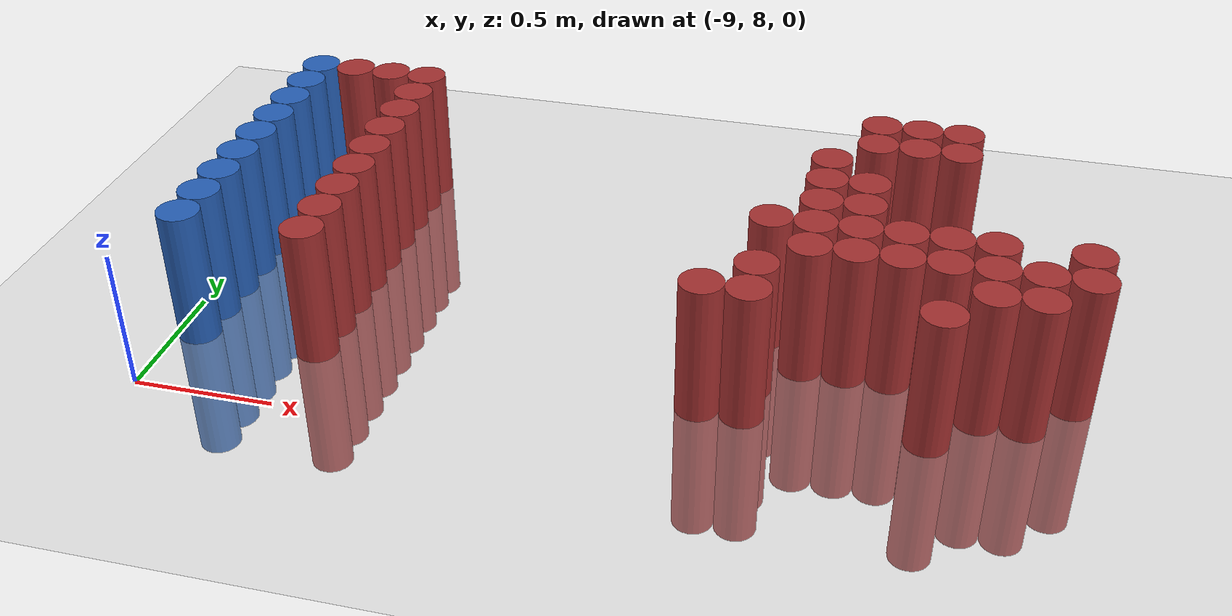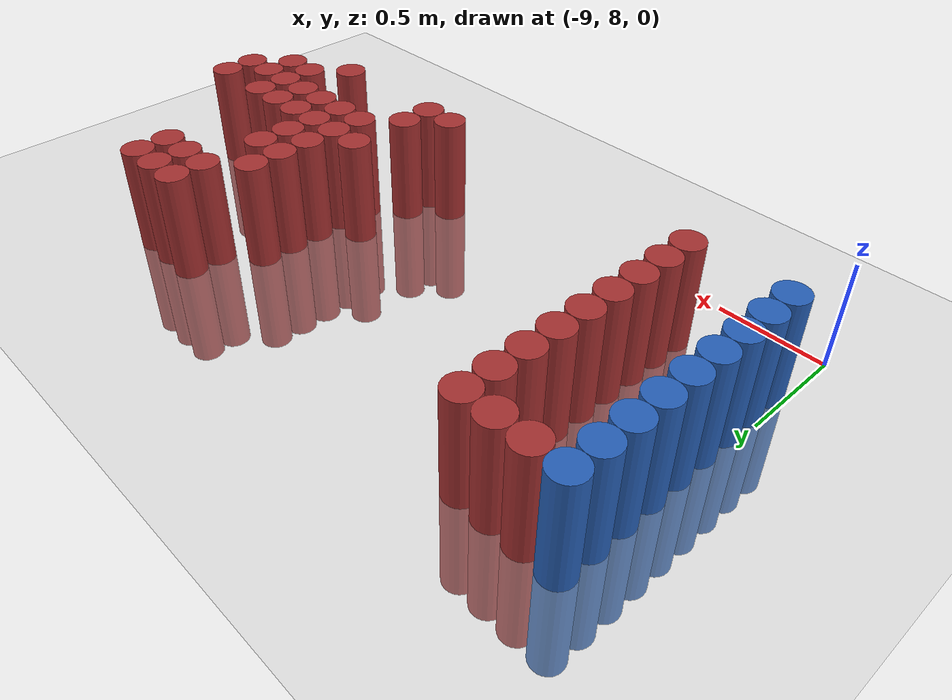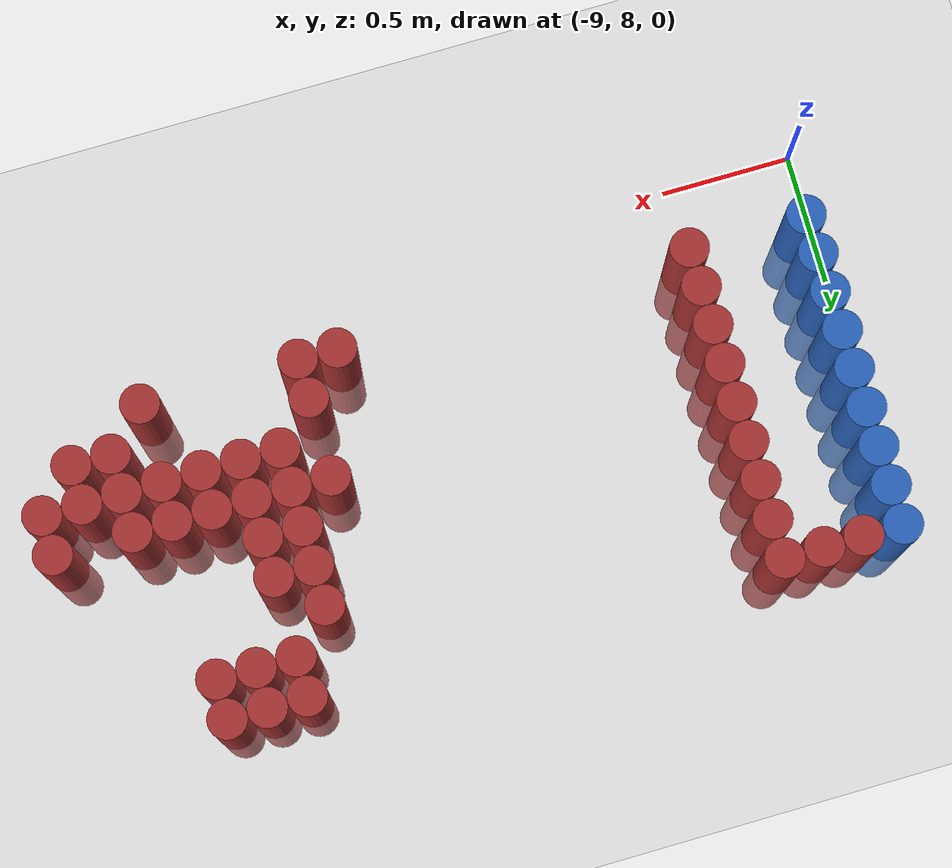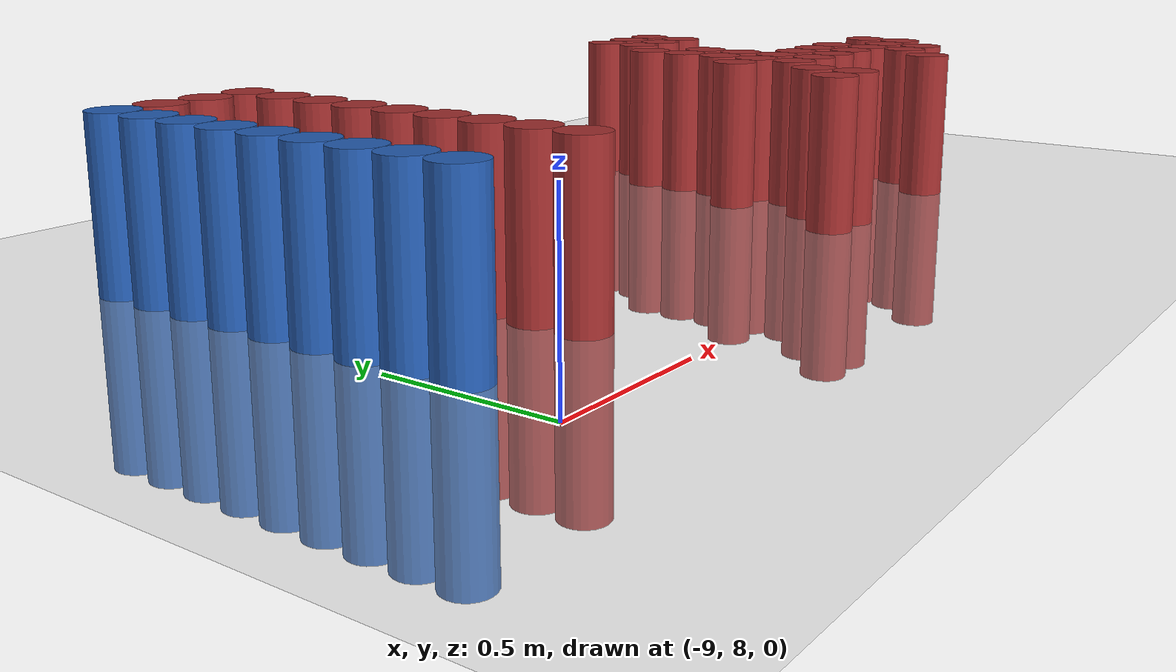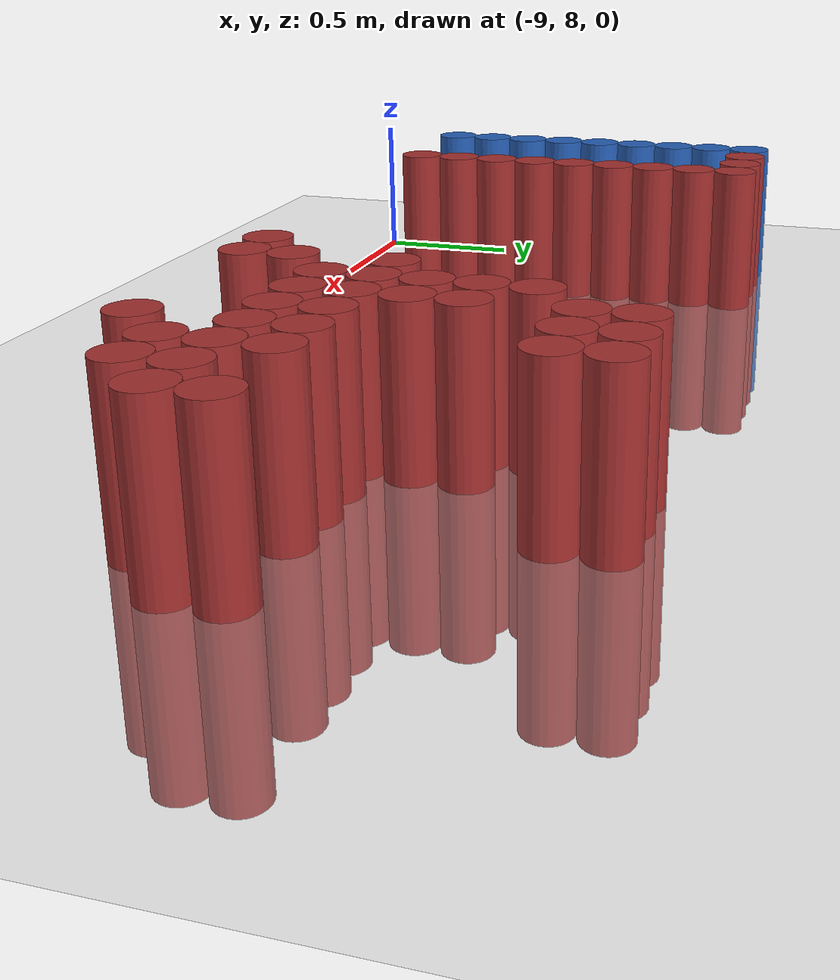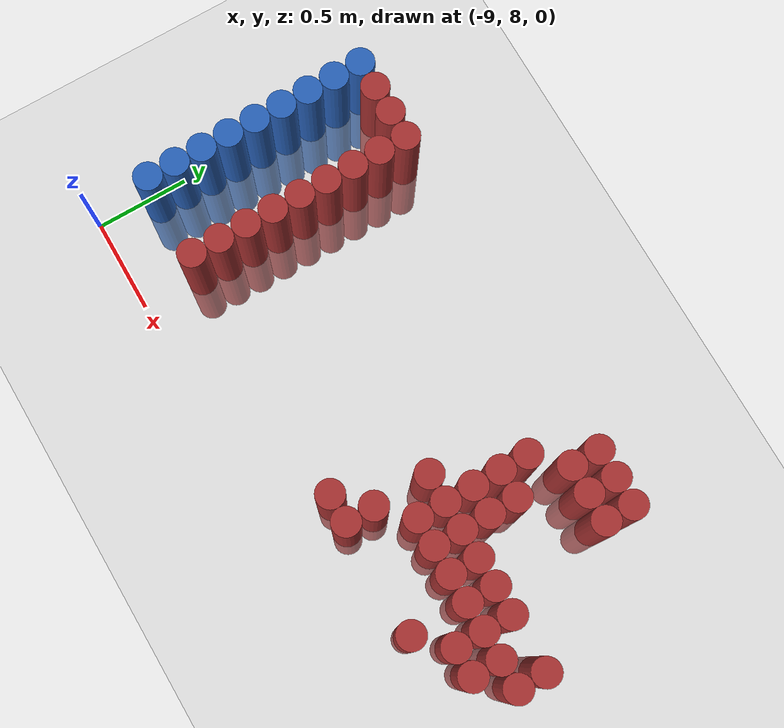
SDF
<sdf version="1.6">
 <world name="default">
  <model name="ground_plane">
   <static>1</static>
   <link name="link">
    <collision name="collision">
     <geometry><plane><normal>0 0 1</normal><size>100 100</size></plane></geometry>
     <surface><friction><ode><mu>100</mu><mu2>50</mu2></ode></friction></surface>
    </collision>
    <visual name="visual">
     <cast_shadows>0</cast_shadows>
     <geometry><plane><normal>0 0 1</normal><size>100 100</size></plane></geometry>
     <material>
      <script><uri>file://media/materials/scripts/gazebo.material</uri><name>Gazebo/Grey</name></script>
     </material>
    </visual>
   </link>
  </model>
  <model name="unit_cylinder_146">
   <static>1</static>
   <pose>-8.925000 8.325000 0.000000 0.000000 0.000000 0.000000</pose>
   <link name="link">
    <inertial>
     <mass>1</mass>
     <inertia><ixx>0.145833</ixx><ixy>0</ixy><ixz>0</ixz><iyy>0.145833</iyy><iyz>0</iyz><izz>0.125</izz></inertia>
    </inertial>
    <collision name="collision">
     <geometry><cylinder><radius>0.075000</radius><length>1</length></cylinder></geometry>
    </collision>
    <visual name="visual">
     <geometry><cylinder><radius>0.075000</radius><length>1</length></cylinder></geometry>
     <material>
      <ambient>0.152000 0.379000 0.720000 1</ambient>
      <diffuse>0.152000 0.379000 0.720000 1</diffuse>
     </material>
     <material>
      <script><name>Gazebo/Grey</name><uri>file://media/materials/scripts/gazebo.material</uri></script>
     </material>
    </visual>
   </link>
  </model>
  <model name="unit_cylinder_147">
   <static>1</static>
   <pose>-8.925000 8.475000 0.000000 0.000000 0.000000 0.000000</pose>
   <link name="link">
    <inertial>
     <mass>1</mass>
     <inertia><ixx>0.145833</ixx><ixy>0</ixy><ixz>0</ixz><iyy>0.145833</iyy><iyz>0</iyz><izz>0.125</izz></inertia>
    </inertial>
    <collision name="collision">
     <geometry><cylinder><radius>0.075000</radius><length>1</length></cylinder></geometry>
    </collision>
    <visual name="visual">
     <geometry><cylinder><radius>0.075000</radius><length>1</length></cylinder></geometry>
     <material>
      <ambient>0.152000 0.379000 0.720000 1</ambient>
      <diffuse>0.152000 0.379000 0.720000 1</diffuse>
     </material>
     <material>
      <script><name>Gazebo/Grey</name><uri>file://media/materials/scripts/gazebo.material</uri></script>
     </material>
    </visual>
   </link>
  </model>
  <model name="unit_cylinder_148">
   <static>1</static>
   <pose>-8.925000 8.625000 0.000000 0.000000 0.000000 0.000000</pose>
   <link name="link">
    <inertial>
     <mass>1</mass>
     <inertia><ixx>0.145833</ixx><ixy>0</ixy><ixz>0</ixz><iyy>0.145833</iyy><iyz>0</iyz><izz>0.125</izz></inertia>
    </inertial>
    <collision name="collision">
     <geometry><cylinder><radius>0.075000</radius><length>1</length></cylinder></geometry>
    </collision>
    <visual name="visual">
     <geometry><cylinder><radius>0.075000</radius><length>1</length></cylinder></geometry>
     <material>
      <ambient>0.152000 0.379000 0.720000 1</ambient>
      <diffuse>0.152000 0.379000 0.720000 1</diffuse>
     </material>
     <material>
      <script><name>Gazebo/Grey</name><uri>file://media/materials/scripts/gazebo.material</uri></script>
     </material>
    </visual>
   </link>
  </model>
  <model name="unit_cylinder_149">
   <static>1</static>
   <pose>-8.925000 8.775000 0.000000 0.000000 0.000000 0.000000</pose>
   <link name="link">
    <inertial>
     <mass>1</mass>
     <inertia><ixx>0.145833</ixx><ixy>0</ixy><ixz>0</ixz><iyy>0.145833</iyy><iyz>0</iyz><izz>0.125</izz></inertia>
    </inertial>
    <collision name="collision">
     <geometry><cylinder><radius>0.075000</radius><length>1</length></cylinder></geometry>
    </collision>
    <visual name="visual">
     <geometry><cylinder><radius>0.075000</radius><length>1</length></cylinder></geometry>
     <material>
      <ambient>0.152000 0.379000 0.720000 1</ambient>
      <diffuse>0.152000 0.379000 0.720000 1</diffuse>
     </material>
     <material>
      <script><name>Gazebo/Grey</name><uri>file://media/materials/scripts/gazebo.material</uri></script>
     </material>
    </visual>
   </link>
  </model>
  <model name="unit_cylinder_150">
   <static>1</static>
   <pose>-8.925000 8.925000 0.000000 0.000000 0.000000 0.000000</pose>
   <link name="link">
    <inertial>
     <mass>1</mass>
     <inertia><ixx>0.145833</ixx><ixy>0</ixy><ixz>0</ixz><iyy>0.145833</iyy><iyz>0</iyz><izz>0.125</izz></inertia>
    </inertial>
    <collision name="collision">
     <geometry><cylinder><radius>0.075000</radius><length>1</length></cylinder></geometry>
    </collision>
    <visual name="visual">
     <geometry><cylinder><radius>0.075000</radius><length>1</length></cylinder></geometry>
     <material>
      <ambient>0.152000 0.379000 0.720000 1</ambient>
      <diffuse>0.152000 0.379000 0.720000 1</diffuse>
     </material>
     <material>
      <script><name>Gazebo/Grey</name><uri>file://media/materials/scripts/gazebo.material</uri></script>
     </material>
    </visual>
   </link>
  </model>
  <model name="unit_cylinder_151">
   <static>1</static>
   <pose>-8.925000 9.075000 0.000000 0.000000 0.000000 0.000000</pose>
   <link name="link">
    <inertial>
     <mass>1</mass>
     <inertia><ixx>0.145833</ixx><ixy>0</ixy><ixz>0</ixz><iyy>0.145833</iyy><iyz>0</iyz><izz>0.125</izz></inertia>
    </inertial>
    <collision name="collision">
     <geometry><cylinder><radius>0.075000</radius><length>1</length></cylinder></geometry>
    </collision>
    <visual name="visual">
     <geometry><cylinder><radius>0.075000</radius><length>1</length></cylinder></geometry>
     <material>
      <ambient>0.152000 0.379000 0.720000 1</ambient>
      <diffuse>0.152000 0.379000 0.720000 1</diffuse>
     </material>
     <material>
      <script><name>Gazebo/Grey</name><uri>file://media/materials/scripts/gazebo.material</uri></script>
     </material>
    </visual>
   </link>
  </model>
  <model name="unit_cylinder_152">
   <static>1</static>
   <pose>-8.925000 9.225000 0.000000 0.000000 0.000000 0.000000</pose>
   <link name="link">
    <inertial>
     <mass>1</mass>
     <inertia><ixx>0.145833</ixx><ixy>0</ixy><ixz>0</ixz><iyy>0.145833</iyy><iyz>0</iyz><izz>0.125</izz></inertia>
    </inertial>
    <collision name="collision">
     <geometry><cylinder><radius>0.075000</radius><length>1</length></cylinder></geometry>
    </collision>
    <visual name="visual">
     <geometry><cylinder><radius>0.075000</radius><length>1</length></cylinder></geometry>
     <material>
      <ambient>0.152000 0.379000 0.720000 1</ambient>
      <diffuse>0.152000 0.379000 0.720000 1</diffuse>
     </material>
     <material>
      <script><name>Gazebo/Grey</name><uri>file://media/materials/scripts/gazebo.material</uri></script>
     </material>
    </visual>
   </link>
  </model>
  <model name="unit_cylinder_153">
   <static>1</static>
   <pose>-8.925000 9.375000 0.000000 0.000000 0.000000 0.000000</pose>
   <link name="link">
    <inertial>
     <mass>1</mass>
     <inertia><ixx>0.145833</ixx><ixy>0</ixy><ixz>0</ixz><iyy>0.145833</iyy><iyz>0</iyz><izz>0.125</izz></inertia>
    </inertial>
    <collision name="collision">
     <geometry><cylinder><radius>0.075000</radius><length>1</length></cylinder></geometry>
    </collision>
    <visual name="visual">
     <geometry><cylinder><radius>0.075000</radius><length>1</length></cylinder></geometry>
     <material>
      <ambient>0.152000 0.379000 0.720000 1</ambient>
      <diffuse>0.152000 0.379000 0.720000 1</diffuse>
     </material>
     <material>
      <script><name>Gazebo/Grey</name><uri>file://media/materials/scripts/gazebo.material</uri></script>
     </material>
    </visual>
   </link>
  </model>
  <model name="unit_cylinder_154">
   <static>1</static>
   <pose>-8.925000 9.525000 0.000000 0.000000 0.000000 0.000000</pose>
   <link name="link">
    <inertial>
     <mass>1</mass>
     <inertia><ixx>0.145833</ixx><ixy>0</ixy><ixz>0</ixz><iyy>0.145833</iyy><iyz>0</iyz><izz>0.125</izz></inertia>
    </inertial>
    <collision name="collision">
     <geometry><cylinder><radius>0.075000</radius><length>1</length></cylinder></geometry>
    </collision>
    <visual name="visual">
     <geometry><cylinder><radius>0.075000</radius><length>1</length></cylinder></geometry>
     <material>
      <ambient>0.152000 0.379000 0.720000 1</ambient>
      <diffuse>0.152000 0.379000 0.720000 1</diffuse>
     </material>
     <material>
      <script><name>Gazebo/Grey</name><uri>file://media/materials/scripts/gazebo.material</uri></script>
     </material>
    </visual>
   </link>
  </model>
  <model name="unit_cylinder_156">
   <static>1</static>
   <pose>-8.775000 9.525000 0.000000 0.000000 0.000000 0.000000</pose>
   <link name="link">
    <inertial>
     <mass>1</mass>
     <inertia><ixx>0.145833</ixx><ixy>0</ixy><ixz>0</ixz><iyy>0.145833</iyy><iyz>0</iyz><izz>0.125</izz></inertia>
    </inertial>
    <collision name="collision">
     <geometry><cylinder><radius>0.075000</radius><length>1</length></cylinder></geometry>
    </collision>
    <visual name="visual">
     <geometry><cylinder><radius>0.075000</radius><length>1</length></cylinder></geometry>
     <material>
      <ambient>0.648000 0.192000 0.192000 1</ambient>
      <diffuse>0.648000 0.192000 0.192000 1</diffuse>
     </material>
     <material>
      <script><name>Gazebo/Grey</name><uri>file://media/materials/scripts/gazebo.material</uri></script>
     </material>
    </visual>
   </link>
  </model>
  <model name="unit_cylinder_158">
   <static>1</static>
   <pose>-8.625000 9.525000 0.000000 0.000000 0.000000 0.000000</pose>
   <link name="link">
    <inertial>
     <mass>1</mass>
     <inertia><ixx>0.145833</ixx><ixy>0</ixy><ixz>0</ixz><iyy>0.145833</iyy><iyz>0</iyz><izz>0.125</izz></inertia>
    </inertial>
    <collision name="collision">
     <geometry><cylinder><radius>0.075000</radius><length>1</length></cylinder></geometry>
    </collision>
    <visual name="visual">
     <geometry><cylinder><radius>0.075000</radius><length>1</length></cylinder></geometry>
     <material>
      <ambient>0.648000 0.192000 0.192000 1</ambient>
      <diffuse>0.648000 0.192000 0.192000 1</diffuse>
     </material>
     <material>
      <script><name>Gazebo/Grey</name><uri>file://media/materials/scripts/gazebo.material</uri></script>
     </material>
    </visual>
   </link>
  </model>
  <model name="unit_cylinder_170">
   <static>1</static>
   <pose>-8.475000 8.325000 0.000000 0.000000 0.000000 0.000000</pose>
   <link name="link">
    <inertial>
     <mass>1</mass>
     <inertia><ixx>0.145833</ixx><ixy>0</ixy><ixz>0</ixz><iyy>0.145833</iyy><iyz>0</iyz><izz>0.125</izz></inertia>
    </inertial>
    <collision name="collision">
     <geometry><cylinder><radius>0.075000</radius><length>1</length></cylinder></geometry>
    </collision>
    <visual name="visual">
     <geometry><cylinder><radius>0.075000</radius><length>1</length></cylinder></geometry>
     <material>
      <ambient>0.648000 0.192000 0.192000 1</ambient>
      <diffuse>0.648000 0.192000 0.192000 1</diffuse>
     </material>
     <material>
      <script><name>Gazebo/Grey</name><uri>file://media/materials/scripts/gazebo.material</uri></script>
     </material>
    </visual>
   </link>
  </model>
  <model name="unit_cylinder_171">
   <static>1</static>
   <pose>-8.475000 8.475000 0.000000 0.000000 0.000000 0.000000</pose>
   <link name="link">
    <inertial>
     <mass>1</mass>
     <inertia><ixx>0.145833</ixx><ixy>0</ixy><ixz>0</ixz><iyy>0.145833</iyy><iyz>0</iyz><izz>0.125</izz></inertia>
    </inertial>
    <collision name="collision">
     <geometry><cylinder><radius>0.075000</radius><length>1</length></cylinder></geometry>
    </collision>
    <visual name="visual">
     <geometry><cylinder><radius>0.075000</radius><length>1</length></cylinder></geometry>
     <material>
      <ambient>0.648000 0.192000 0.192000 1</ambient>
      <diffuse>0.648000 0.192000 0.192000 1</diffuse>
     </material>
     <material>
      <script><name>Gazebo/Grey</name><uri>file://media/materials/scripts/gazebo.material</uri></script>
     </material>
    </visual>
   </link>
  </model>
  <model name="unit_cylinder_172">
   <static>1</static>
   <pose>-8.475000 8.625000 0.000000 0.000000 0.000000 0.000000</pose>
   <link name="link">
    <inertial>
     <mass>1</mass>
     <inertia><ixx>0.145833</ixx><ixy>0</ixy><ixz>0</ixz><iyy>0.145833</iyy><iyz>0</iyz><izz>0.125</izz></inertia>
    </inertial>
    <collision name="collision">
     <geometry><cylinder><radius>0.075000</radius><length>1</length></cylinder></geometry>
    </collision>
    <visual name="visual">
     <geometry><cylinder><radius>0.075000</radius><length>1</length></cylinder></geometry>
     <material>
      <ambient>0.648000 0.192000 0.192000 1</ambient>
      <diffuse>0.648000 0.192000 0.192000 1</diffuse>
     </material>
     <material>
      <script><name>Gazebo/Grey</name><uri>file://media/materials/scripts/gazebo.material</uri></script>
     </material>
    </visual>
   </link>
  </model>
  <model name="unit_cylinder_173">
   <static>1</static>
   <pose>-8.475000 8.775000 0.000000 0.000000 0.000000 0.000000</pose>
   <link name="link">
    <inertial>
     <mass>1</mass>
     <inertia><ixx>0.145833</ixx><ixy>0</ixy><ixz>0</ixz><iyy>0.145833</iyy><iyz>0</iyz><izz>0.125</izz></inertia>
    </inertial>
    <collision name="collision">
     <geometry><cylinder><radius>0.075000</radius><length>1</length></cylinder></geometry>
    </collision>
    <visual name="visual">
     <geometry><cylinder><radius>0.075000</radius><length>1</length></cylinder></geometry>
     <material>
      <ambient>0.648000 0.192000 0.192000 1</ambient>
      <diffuse>0.648000 0.192000 0.192000 1</diffuse>
     </material>
     <material>
      <script><name>Gazebo/Grey</name><uri>file://media/materials/scripts/gazebo.material</uri></script>
     </material>
    </visual>
   </link>
  </model>
  <model name="unit_cylinder_174">
   <static>1</static>
   <pose>-8.475000 8.925000 0.000000 0.000000 0.000000 0.000000</pose>
   <link name="link">
    <inertial>
     <mass>1</mass>
     <inertia><ixx>0.145833</ixx><ixy>0</ixy><ixz>0</ixz><iyy>0.145833</iyy><iyz>0</iyz><izz>0.125</izz></inertia>
    </inertial>
    <collision name="collision">
     <geometry><cylinder><radius>0.075000</radius><length>1</length></cylinder></geometry>
    </collision>
    <visual name="visual">
     <geometry><cylinder><radius>0.075000</radius><length>1</length></cylinder></geometry>
     <material>
      <ambient>0.648000 0.192000 0.192000 1</ambient>
      <diffuse>0.648000 0.192000 0.192000 1</diffuse>
     </material>
     <material>
      <script><name>Gazebo/Grey</name><uri>file://media/materials/scripts/gazebo.material</uri></script>
     </material>
    </visual>
   </link>
  </model>
  <model name="unit_cylinder_175">
   <static>1</static>
   <pose>-8.475000 9.075000 0.000000 0.000000 0.000000 0.000000</pose>
   <link name="link">
    <inertial>
     <mass>1</mass>
     <inertia><ixx>0.145833</ixx><ixy>0</ixy><ixz>0</ixz><iyy>0.145833</iyy><iyz>0</iyz><izz>0.125</izz></inertia>
    </inertial>
    <collision name="collision">
     <geometry><cylinder><radius>0.075000</radius><length>1</length></cylinder></geometry>
    </collision>
    <visual name="visual">
     <geometry><cylinder><radius>0.075000</radius><length>1</length></cylinder></geometry>
     <material>
      <ambient>0.648000 0.192000 0.192000 1</ambient>
      <diffuse>0.648000 0.192000 0.192000 1</diffuse>
     </material>
     <material>
      <script><name>Gazebo/Grey</name><uri>file://media/materials/scripts/gazebo.material</uri></script>
     </material>
    </visual>
   </link>
  </model>
  <model name="unit_cylinder_176">
   <static>1</static>
   <pose>-8.475000 9.225000 0.000000 0.000000 0.000000 0.000000</pose>
   <link name="link">
    <inertial>
     <mass>1</mass>
     <inertia><ixx>0.145833</ixx><ixy>0</ixy><ixz>0</ixz><iyy>0.145833</iyy><iyz>0</iyz><izz>0.125</izz></inertia>
    </inertial>
    <collision name="collision">
     <geometry><cylinder><radius>0.075000</radius><length>1</length></cylinder></geometry>
    </collision>
    <visual name="visual">
     <geometry><cylinder><radius>0.075000</radius><length>1</length></cylinder></geometry>
     <material>
      <ambient>0.648000 0.192000 0.192000 1</ambient>
      <diffuse>0.648000 0.192000 0.192000 1</diffuse>
     </material>
     <material>
      <script><name>Gazebo/Grey</name><uri>file://media/materials/scripts/gazebo.material</uri></script>
     </material>
    </visual>
   </link>
  </model>
  <model name="unit_cylinder_177">
   <static>1</static>
   <pose>-8.475000 9.375000 0.000000 0.000000 0.000000 0.000000</pose>
   <link name="link">
    <inertial>
     <mass>1</mass>
     <inertia><ixx>0.145833</ixx><ixy>0</ixy><ixz>0</ixz><iyy>0.145833</iyy><iyz>0</iyz><izz>0.125</izz></inertia>
    </inertial>
    <collision name="collision">
     <geometry><cylinder><radius>0.075000</radius><length>1</length></cylinder></geometry>
    </collision>
    <visual name="visual">
     <geometry><cylinder><radius>0.075000</radius><length>1</length></cylinder></geometry>
     <material>
      <ambient>0.648000 0.192000 0.192000 1</ambient>
      <diffuse>0.648000 0.192000 0.192000 1</diffuse>
     </material>
     <material>
      <script><name>Gazebo/Grey</name><uri>file://media/materials/scripts/gazebo.material</uri></script>
     </material>
    </visual>
   </link>
  </model>
  <model name="unit_cylinder_178">
   <static>1</static>
   <pose>-8.475000 9.525000 0.000000 0.000000 0.000000 0.000000</pose>
   <link name="link">
    <inertial>
     <mass>1</mass>
     <inertia><ixx>0.145833</ixx><ixy>0</ixy><ixz>0</ixz><iyy>0.145833</iyy><iyz>0</iyz><izz>0.125</izz></inertia>
    </inertial>
    <collision name="collision">
     <geometry><cylinder><radius>0.075000</radius><length>1</length></cylinder></geometry>
    </collision>
    <visual name="visual">
     <geometry><cylinder><radius>0.075000</radius><length>1</length></cylinder></geometry>
     <material>
      <ambient>0.648000 0.192000 0.192000 1</ambient>
      <diffuse>0.648000 0.192000 0.192000 1</diffuse>
     </material>
     <material>
      <script><name>Gazebo/Grey</name><uri>file://media/materials/scripts/gazebo.material</uri></script>
     </material>
    </visual>
   </link>
  </model>
  <model name="unit_cylinder_199">
   <static>1</static>
   <pose>-7.125000 8.325000 0.000000 0.000000 0.000000 0.000000</pose>
   <link name="link">
    <inertial>
     <mass>1</mass>
     <inertia><ixx>0.145833</ixx><ixy>0</ixy><ixz>0</ixz><iyy>0.145833</iyy><iyz>0</iyz><izz>0.125</izz></inertia>
    </inertial>
    <collision name="collision">
     <geometry><cylinder><radius>0.075000</radius><length>1</length></cylinder></geometry>
    </collision>
    <visual name="visual">
     <geometry><cylinder><radius>0.075000</radius><length>1</length></cylinder></geometry>
     <material>
      <ambient>0.648000 0.192000 0.192000 1</ambient>
      <diffuse>0.648000 0.192000 0.192000 1</diffuse>
     </material>
     <material>
      <script><name>Gazebo/Grey</name><uri>file://media/materials/scripts/gazebo.material</uri></script>
     </material>
    </visual>
   </link>
  </model>
  <model name="unit_cylinder_206">
   <static>1</static>
   <pose>-6.975000 8.325000 0.000000 0.000000 0.000000 0.000000</pose>
   <link name="link">
    <inertial>
     <mass>1</mass>
     <inertia><ixx>0.145833</ixx><ixy>0</ixy><ixz>0</ixz><iyy>0.145833</iyy><iyz>0</iyz><izz>0.125</izz></inertia>
    </inertial>
    <collision name="collision">
     <geometry><cylinder><radius>0.075000</radius><length>1</length></cylinder></geometry>
    </collision>
    <visual name="visual">
     <geometry><cylinder><radius>0.075000</radius><length>1</length></cylinder></geometry>
     <material>
      <ambient>0.648000 0.192000 0.192000 1</ambient>
      <diffuse>0.648000 0.192000 0.192000 1</diffuse>
     </material>
     <material>
      <script><name>Gazebo/Grey</name><uri>file://media/materials/scripts/gazebo.material</uri></script>
     </material>
    </visual>
   </link>
  </model>
  <model name="unit_cylinder_207">
   <static>1</static>
   <pose>-6.975000 8.475000 0.000000 0.000000 0.000000 0.000000</pose>
   <link name="link">
    <inertial>
     <mass>1</mass>
     <inertia><ixx>0.145833</ixx><ixy>0</ixy><ixz>0</ixz><iyy>0.145833</iyy><iyz>0</iyz><izz>0.125</izz></inertia>
    </inertial>
    <collision name="collision">
     <geometry><cylinder><radius>0.075000</radius><length>1</length></cylinder></geometry>
    </collision>
    <visual name="visual">
     <geometry><cylinder><radius>0.075000</radius><length>1</length></cylinder></geometry>
     <material>
      <ambient>0.648000 0.192000 0.192000 1</ambient>
      <diffuse>0.648000 0.192000 0.192000 1</diffuse>
     </material>
     <material>
      <script><name>Gazebo/Grey</name><uri>file://media/materials/scripts/gazebo.material</uri></script>
     </material>
    </visual>
   </link>
  </model>
  <model name="unit_cylinder_208">
   <static>1</static>
   <pose>-6.975000 8.775000 0.000000 0.000000 0.000000 0.000000</pose>
   <link name="link">
    <inertial>
     <mass>1</mass>
     <inertia><ixx>0.145833</ixx><ixy>0</ixy><ixz>0</ixz><iyy>0.145833</iyy><iyz>0</iyz><izz>0.125</izz></inertia>
    </inertial>
    <collision name="collision">
     <geometry><cylinder><radius>0.075000</radius><length>1</length></cylinder></geometry>
    </collision>
    <visual name="visual">
     <geometry><cylinder><radius>0.075000</radius><length>1</length></cylinder></geometry>
     <material>
      <ambient>0.648000 0.192000 0.192000 1</ambient>
      <diffuse>0.648000 0.192000 0.192000 1</diffuse>
     </material>
     <material>
      <script><name>Gazebo/Grey</name><uri>file://media/materials/scripts/gazebo.material</uri></script>
     </material>
    </visual>
   </link>
  </model>
  <model name="unit_cylinder_217">
   <static>1</static>
   <pose>-6.825000 8.625000 0.000000 0.000000 0.000000 0.000000</pose>
   <link name="link">
    <inertial>
     <mass>1</mass>
     <inertia><ixx>0.145833</ixx><ixy>0</ixy><ixz>0</ixz><iyy>0.145833</iyy><iyz>0</iyz><izz>0.125</izz></inertia>
    </inertial>
    <collision name="collision">
     <geometry><cylinder><radius>0.075000</radius><length>1</length></cylinder></geometry>
    </collision>
    <visual name="visual">
     <geometry><cylinder><radius>0.075000</radius><length>1</length></cylinder></geometry>
     <material>
      <ambient>0.648000 0.192000 0.192000 1</ambient>
      <diffuse>0.648000 0.192000 0.192000 1</diffuse>
     </material>
     <material>
      <script><name>Gazebo/Grey</name><uri>file://media/materials/scripts/gazebo.material</uri></script>
     </material>
    </visual>
   </link>
  </model>
  <model name="unit_cylinder_218">
   <static>1</static>
   <pose>-6.825000 8.775000 0.000000 0.000000 0.000000 0.000000</pose>
   <link name="link">
    <inertial>
     <mass>1</mass>
     <inertia><ixx>0.145833</ixx><ixy>0</ixy><ixz>0</ixz><iyy>0.145833</iyy><iyz>0</iyz><izz>0.125</izz></inertia>
    </inertial>
    <collision name="collision">
     <geometry><cylinder><radius>0.075000</radius><length>1</length></cylinder></geometry>
    </collision>
    <visual name="visual">
     <geometry><cylinder><radius>0.075000</radius><length>1</length></cylinder></geometry>
     <material>
      <ambient>0.648000 0.192000 0.192000 1</ambient>
      <diffuse>0.648000 0.192000 0.192000 1</diffuse>
     </material>
     <material>
      <script><name>Gazebo/Grey</name><uri>file://media/materials/scripts/gazebo.material</uri></script>
     </material>
    </visual>
   </link>
  </model>
  <model name="unit_cylinder_219">
   <static>1</static>
   <pose>-6.825000 8.925000 0.000000 0.000000 0.000000 0.000000</pose>
   <link name="link">
    <inertial>
     <mass>1</mass>
     <inertia><ixx>0.145833</ixx><ixy>0</ixy><ixz>0</ixz><iyy>0.145833</iyy><iyz>0</iyz><izz>0.125</izz></inertia>
    </inertial>
    <collision name="collision">
     <geometry><cylinder><radius>0.075000</radius><length>1</length></cylinder></geometry>
    </collision>
    <visual name="visual">
     <geometry><cylinder><radius>0.075000</radius><length>1</length></cylinder></geometry>
     <material>
      <ambient>0.648000 0.192000 0.192000 1</ambient>
      <diffuse>0.648000 0.192000 0.192000 1</diffuse>
     </material>
     <material>
      <script><name>Gazebo/Grey</name><uri>file://media/materials/scripts/gazebo.material</uri></script>
     </material>
    </visual>
   </link>
  </model>
  <model name="unit_cylinder_220">
   <static>1</static>
   <pose>-6.825000 9.075000 0.000000 0.000000 0.000000 0.000000</pose>
   <link name="link">
    <inertial>
     <mass>1</mass>
     <inertia><ixx>0.145833</ixx><ixy>0</ixy><ixz>0</ixz><iyy>0.145833</iyy><iyz>0</iyz><izz>0.125</izz></inertia>
    </inertial>
    <collision name="collision">
     <geometry><cylinder><radius>0.075000</radius><length>1</length></cylinder></geometry>
    </collision>
    <visual name="visual">
     <geometry><cylinder><radius>0.075000</radius><length>1</length></cylinder></geometry>
     <material>
      <ambient>0.648000 0.192000 0.192000 1</ambient>
      <diffuse>0.648000 0.192000 0.192000 1</diffuse>
     </material>
     <material>
      <script><name>Gazebo/Grey</name><uri>file://media/materials/scripts/gazebo.material</uri></script>
     </material>
    </visual>
   </link>
  </model>
  <model name="unit_cylinder_221">
   <static>1</static>
   <pose>-6.825000 9.225000 0.000000 0.000000 0.000000 0.000000</pose>
   <link name="link">
    <inertial>
     <mass>1</mass>
     <inertia><ixx>0.145833</ixx><ixy>0</ixy><ixz>0</ixz><iyy>0.145833</iyy><iyz>0</iyz><izz>0.125</izz></inertia>
    </inertial>
    <collision name="collision">
     <geometry><cylinder><radius>0.075000</radius><length>1</length></cylinder></geometry>
    </collision>
    <visual name="visual">
     <geometry><cylinder><radius>0.075000</radius><length>1</length></cylinder></geometry>
     <material>
      <ambient>0.648000 0.192000 0.192000 1</ambient>
      <diffuse>0.648000 0.192000 0.192000 1</diffuse>
     </material>
     <material>
      <script><name>Gazebo/Grey</name><uri>file://media/materials/scripts/gazebo.material</uri></script>
     </material>
    </visual>
   </link>
  </model>
  <model name="unit_cylinder_226">
   <static>1</static>
   <pose>-6.675000 8.625000 0.000000 0.000000 0.000000 0.000000</pose>
   <link name="link">
    <inertial>
     <mass>1</mass>
     <inertia><ixx>0.145833</ixx><ixy>0</ixy><ixz>0</ixz><iyy>0.145833</iyy><iyz>0</iyz><izz>0.125</izz></inertia>
    </inertial>
    <collision name="collision">
     <geometry><cylinder><radius>0.075000</radius><length>1</length></cylinder></geometry>
    </collision>
    <visual name="visual">
     <geometry><cylinder><radius>0.075000</radius><length>1</length></cylinder></geometry>
     <material>
      <ambient>0.648000 0.192000 0.192000 1</ambient>
      <diffuse>0.648000 0.192000 0.192000 1</diffuse>
     </material>
     <material>
      <script><name>Gazebo/Grey</name><uri>file://media/materials/scripts/gazebo.material</uri></script>
     </material>
    </visual>
   </link>
  </model>
  <model name="unit_cylinder_227">
   <static>1</static>
   <pose>-6.675000 8.775000 0.000000 0.000000 0.000000 0.000000</pose>
   <link name="link">
    <inertial>
     <mass>1</mass>
     <inertia><ixx>0.145833</ixx><ixy>0</ixy><ixz>0</ixz><iyy>0.145833</iyy><iyz>0</iyz><izz>0.125</izz></inertia>
    </inertial>
    <collision name="collision">
     <geometry><cylinder><radius>0.075000</radius><length>1</length></cylinder></geometry>
    </collision>
    <visual name="visual">
     <geometry><cylinder><radius>0.075000</radius><length>1</length></cylinder></geometry>
     <material>
      <ambient>0.648000 0.192000 0.192000 1</ambient>
      <diffuse>0.648000 0.192000 0.192000 1</diffuse>
     </material>
     <material>
      <script><name>Gazebo/Grey</name><uri>file://media/materials/scripts/gazebo.material</uri></script>
     </material>
    </visual>
   </link>
  </model>
  <model name="unit_cylinder_228">
   <static>1</static>
   <pose>-6.675000 8.925000 0.000000 0.000000 0.000000 0.000000</pose>
   <link name="link">
    <inertial>
     <mass>1</mass>
     <inertia><ixx>0.145833</ixx><ixy>0</ixy><ixz>0</ixz><iyy>0.145833</iyy><iyz>0</iyz><izz>0.125</izz></inertia>
    </inertial>
    <collision name="collision">
     <geometry><cylinder><radius>0.075000</radius><length>1</length></cylinder></geometry>
    </collision>
    <visual name="visual">
     <geometry><cylinder><radius>0.075000</radius><length>1</length></cylinder></geometry>
     <material>
      <ambient>0.648000 0.192000 0.192000 1</ambient>
      <diffuse>0.648000 0.192000 0.192000 1</diffuse>
     </material>
     <material>
      <script><name>Gazebo/Grey</name><uri>file://media/materials/scripts/gazebo.material</uri></script>
     </material>
    </visual>
   </link>
  </model>
  <model name="unit_cylinder_229">
   <static>1</static>
   <pose>-6.675000 9.075000 0.000000 0.000000 0.000000 0.000000</pose>
   <link name="link">
    <inertial>
     <mass>1</mass>
     <inertia><ixx>0.145833</ixx><ixy>0</ixy><ixz>0</ixz><iyy>0.145833</iyy><iyz>0</iyz><izz>0.125</izz></inertia>
    </inertial>
    <collision name="collision">
     <geometry><cylinder><radius>0.075000</radius><length>1</length></cylinder></geometry>
    </collision>
    <visual name="visual">
     <geometry><cylinder><radius>0.075000</radius><length>1</length></cylinder></geometry>
     <material>
      <ambient>0.648000 0.192000 0.192000 1</ambient>
      <diffuse>0.648000 0.192000 0.192000 1</diffuse>
     </material>
     <material>
      <script><name>Gazebo/Grey</name><uri>file://media/materials/scripts/gazebo.material</uri></script>
     </material>
    </visual>
   </link>
  </model>
  <model name="unit_cylinder_230">
   <static>1</static>
   <pose>-6.675000 9.375000 0.000000 0.000000 0.000000 0.000000</pose>
   <link name="link">
    <inertial>
     <mass>1</mass>
     <inertia><ixx>0.145833</ixx><ixy>0</ixy><ixz>0</ixz><iyy>0.145833</iyy><iyz>0</iyz><izz>0.125</izz></inertia>
    </inertial>
    <collision name="collision">
     <geometry><cylinder><radius>0.075000</radius><length>1</length></cylinder></geometry>
    </collision>
    <visual name="visual">
     <geometry><cylinder><radius>0.075000</radius><length>1</length></cylinder></geometry>
     <material>
      <ambient>0.648000 0.192000 0.192000 1</ambient>
      <diffuse>0.648000 0.192000 0.192000 1</diffuse>
     </material>
     <material>
      <script><name>Gazebo/Grey</name><uri>file://media/materials/scripts/gazebo.material</uri></script>
     </material>
    </visual>
   </link>
  </model>
  <model name="unit_cylinder_231">
   <static>1</static>
   <pose>-6.675000 9.525000 0.000000 0.000000 0.000000 0.000000</pose>
   <link name="link">
    <inertial>
     <mass>1</mass>
     <inertia><ixx>0.145833</ixx><ixy>0</ixy><ixz>0</ixz><iyy>0.145833</iyy><iyz>0</iyz><izz>0.125</izz></inertia>
    </inertial>
    <collision name="collision">
     <geometry><cylinder><radius>0.075000</radius><length>1</length></cylinder></geometry>
    </collision>
    <visual name="visual">
     <geometry><cylinder><radius>0.075000</radius><length>1</length></cylinder></geometry>
     <material>
      <ambient>0.648000 0.192000 0.192000 1</ambient>
      <diffuse>0.648000 0.192000 0.192000 1</diffuse>
     </material>
     <material>
      <script><name>Gazebo/Grey</name><uri>file://media/materials/scripts/gazebo.material</uri></script>
     </material>
    </visual>
   </link>
  </model>
  <model name="unit_cylinder_235">
   <static>1</static>
   <pose>-6.525000 8.625000 0.000000 0.000000 0.000000 0.000000</pose>
   <link name="link">
    <inertial>
     <mass>1</mass>
     <inertia><ixx>0.145833</ixx><ixy>0</ixy><ixz>0</ixz><iyy>0.145833</iyy><iyz>0</iyz><izz>0.125</izz></inertia>
    </inertial>
    <collision name="collision">
     <geometry><cylinder><radius>0.075000</radius><length>1</length></cylinder></geometry>
    </collision>
    <visual name="visual">
     <geometry><cylinder><radius>0.075000</radius><length>1</length></cylinder></geometry>
     <material>
      <ambient>0.648000 0.192000 0.192000 1</ambient>
      <diffuse>0.648000 0.192000 0.192000 1</diffuse>
     </material>
     <material>
      <script><name>Gazebo/Grey</name><uri>file://media/materials/scripts/gazebo.material</uri></script>
     </material>
    </visual>
   </link>
  </model>
  <model name="unit_cylinder_236">
   <static>1</static>
   <pose>-6.525000 8.775000 0.000000 0.000000 0.000000 0.000000</pose>
   <link name="link">
    <inertial>
     <mass>1</mass>
     <inertia><ixx>0.145833</ixx><ixy>0</ixy><ixz>0</ixz><iyy>0.145833</iyy><iyz>0</iyz><izz>0.125</izz></inertia>
    </inertial>
    <collision name="collision">
     <geometry><cylinder><radius>0.075000</radius><length>1</length></cylinder></geometry>
    </collision>
    <visual name="visual">
     <geometry><cylinder><radius>0.075000</radius><length>1</length></cylinder></geometry>
     <material>
      <ambient>0.648000 0.192000 0.192000 1</ambient>
      <diffuse>0.648000 0.192000 0.192000 1</diffuse>
     </material>
     <material>
      <script><name>Gazebo/Grey</name><uri>file://media/materials/scripts/gazebo.material</uri></script>
     </material>
    </visual>
   </link>
  </model>
  <model name="unit_cylinder_237">
   <static>1</static>
   <pose>-6.525000 9.375000 0.000000 0.000000 0.000000 0.000000</pose>
   <link name="link">
    <inertial>
     <mass>1</mass>
     <inertia><ixx>0.145833</ixx><ixy>0</ixy><ixz>0</ixz><iyy>0.145833</iyy><iyz>0</iyz><izz>0.125</izz></inertia>
    </inertial>
    <collision name="collision">
     <geometry><cylinder><radius>0.075000</radius><length>1</length></cylinder></geometry>
    </collision>
    <visual name="visual">
     <geometry><cylinder><radius>0.075000</radius><length>1</length></cylinder></geometry>
     <material>
      <ambient>0.648000 0.192000 0.192000 1</ambient>
      <diffuse>0.648000 0.192000 0.192000 1</diffuse>
     </material>
     <material>
      <script><name>Gazebo/Grey</name><uri>file://media/materials/scripts/gazebo.material</uri></script>
     </material>
    </visual>
   </link>
  </model>
  <model name="unit_cylinder_238">
   <static>1</static>
   <pose>-6.525000 9.525000 0.000000 0.000000 0.000000 0.000000</pose>
   <link name="link">
    <inertial>
     <mass>1</mass>
     <inertia><ixx>0.145833</ixx><ixy>0</ixy><ixz>0</ixz><iyy>0.145833</iyy><iyz>0</iyz><izz>0.125</izz></inertia>
    </inertial>
    <collision name="collision">
     <geometry><cylinder><radius>0.075000</radius><length>1</length></cylinder></geometry>
    </collision>
    <visual name="visual">
     <geometry><cylinder><radius>0.075000</radius><length>1</length></cylinder></geometry>
     <material>
      <ambient>0.648000 0.192000 0.192000 1</ambient>
      <diffuse>0.648000 0.192000 0.192000 1</diffuse>
     </material>
     <material>
      <script><name>Gazebo/Grey</name><uri>file://media/materials/scripts/gazebo.material</uri></script>
     </material>
    </visual>
   </link>
  </model>
  <model name="unit_cylinder_241">
   <static>1</static>
   <pose>-6.375000 8.325000 0.000000 0.000000 0.000000 0.000000</pose>
   <link name="link">
    <inertial>
     <mass>1</mass>
     <inertia><ixx>0.145833</ixx><ixy>0</ixy><ixz>0</ixz><iyy>0.145833</iyy><iyz>0</iyz><izz>0.125</izz></inertia>
    </inertial>
    <collision name="collision">
     <geometry><cylinder><radius>0.075000</radius><length>1</length></cylinder></geometry>
    </collision>
    <visual name="visual">
     <geometry><cylinder><radius>0.075000</radius><length>1</length></cylinder></geometry>
     <material>
      <ambient>0.648000 0.192000 0.192000 1</ambient>
      <diffuse>0.648000 0.192000 0.192000 1</diffuse>
     </material>
     <material>
      <script><name>Gazebo/Grey</name><uri>file://media/materials/scripts/gazebo.material</uri></script>
     </material>
    </visual>
   </link>
  </model>
  <model name="unit_cylinder_242">
   <static>1</static>
   <pose>-6.375000 8.625000 0.000000 0.000000 0.000000 0.000000</pose>
   <link name="link">
    <inertial>
     <mass>1</mass>
     <inertia><ixx>0.145833</ixx><ixy>0</ixy><ixz>0</ixz><iyy>0.145833</iyy><iyz>0</iyz><izz>0.125</izz></inertia>
    </inertial>
    <collision name="collision">
     <geometry><cylinder><radius>0.075000</radius><length>1</length></cylinder></geometry>
    </collision>
    <visual name="visual">
     <geometry><cylinder><radius>0.075000</radius><length>1</length></cylinder></geometry>
     <material>
      <ambient>0.648000 0.192000 0.192000 1</ambient>
      <diffuse>0.648000 0.192000 0.192000 1</diffuse>
     </material>
     <material>
      <script><name>Gazebo/Grey</name><uri>file://media/materials/scripts/gazebo.material</uri></script>
     </material>
    </visual>
   </link>
  </model>
  <model name="unit_cylinder_243">
   <static>1</static>
   <pose>-6.375000 8.775000 0.000000 0.000000 0.000000 0.000000</pose>
   <link name="link">
    <inertial>
     <mass>1</mass>
     <inertia><ixx>0.145833</ixx><ixy>0</ixy><ixz>0</ixz><iyy>0.145833</iyy><iyz>0</iyz><izz>0.125</izz></inertia>
    </inertial>
    <collision name="collision">
     <geometry><cylinder><radius>0.075000</radius><length>1</length></cylinder></geometry>
    </collision>
    <visual name="visual">
     <geometry><cylinder><radius>0.075000</radius><length>1</length></cylinder></geometry>
     <material>
      <ambient>0.648000 0.192000 0.192000 1</ambient>
      <diffuse>0.648000 0.192000 0.192000 1</diffuse>
     </material>
     <material>
      <script><name>Gazebo/Grey</name><uri>file://media/materials/scripts/gazebo.material</uri></script>
     </material>
    </visual>
   </link>
  </model>
  <model name="unit_cylinder_244">
   <static>1</static>
   <pose>-6.375000 9.375000 0.000000 0.000000 0.000000 0.000000</pose>
   <link name="link">
    <inertial>
     <mass>1</mass>
     <inertia><ixx>0.145833</ixx><ixy>0</ixy><ixz>0</ixz><iyy>0.145833</iyy><iyz>0</iyz><izz>0.125</izz></inertia>
    </inertial>
    <collision name="collision">
     <geometry><cylinder><radius>0.075000</radius><length>1</length></cylinder></geometry>
    </collision>
    <visual name="visual">
     <geometry><cylinder><radius>0.075000</radius><length>1</length></cylinder></geometry>
     <material>
      <ambient>0.648000 0.192000 0.192000 1</ambient>
      <diffuse>0.648000 0.192000 0.192000 1</diffuse>
     </material>
     <material>
      <script><name>Gazebo/Grey</name><uri>file://media/materials/scripts/gazebo.material</uri></script>
     </material>
    </visual>
   </link>
  </model>
  <model name="unit_cylinder_245">
   <static>1</static>
   <pose>-6.375000 9.525000 0.000000 0.000000 0.000000 0.000000</pose>
   <link name="link">
    <inertial>
     <mass>1</mass>
     <inertia><ixx>0.145833</ixx><ixy>0</ixy><ixz>0</ixz><iyy>0.145833</iyy><iyz>0</iyz><izz>0.125</izz></inertia>
    </inertial>
    <collision name="collision">
     <geometry><cylinder><radius>0.075000</radius><length>1</length></cylinder></geometry>
    </collision>
    <visual name="visual">
     <geometry><cylinder><radius>0.075000</radius><length>1</length></cylinder></geometry>
     <material>
      <ambient>0.648000 0.192000 0.192000 1</ambient>
      <diffuse>0.648000 0.192000 0.192000 1</diffuse>
     </material>
     <material>
      <script><name>Gazebo/Grey</name><uri>file://media/materials/scripts/gazebo.material</uri></script>
     </material>
    </visual>
   </link>
  </model>
  <model name="unit_cylinder_247">
   <static>1</static>
   <pose>-6.225000 8.475000 0.000000 0.000000 0.000000 0.000000</pose>
   <link name="link">
    <inertial>
     <mass>1</mass>
     <inertia><ixx>0.145833</ixx><ixy>0</ixy><ixz>0</ixz><iyy>0.145833</iyy><iyz>0</iyz><izz>0.125</izz></inertia>
    </inertial>
    <collision name="collision">
     <geometry><cylinder><radius>0.075000</radius><length>1</length></cylinder></geometry>
    </collision>
    <visual name="visual">
     <geometry><cylinder><radius>0.075000</radius><length>1</length></cylinder></geometry>
     <material>
      <ambient>0.648000 0.192000 0.192000 1</ambient>
      <diffuse>0.648000 0.192000 0.192000 1</diffuse>
     </material>
     <material>
      <script><name>Gazebo/Grey</name><uri>file://media/materials/scripts/gazebo.material</uri></script>
     </material>
    </visual>
   </link>
  </model>
  <model name="unit_cylinder_248">
   <static>1</static>
   <pose>-6.225000 8.625000 0.000000 0.000000 0.000000 0.000000</pose>
   <link name="link">
    <inertial>
     <mass>1</mass>
     <inertia><ixx>0.145833</ixx><ixy>0</ixy><ixz>0</ixz><iyy>0.145833</iyy><iyz>0</iyz><izz>0.125</izz></inertia>
    </inertial>
    <collision name="collision">
     <geometry><cylinder><radius>0.075000</radius><length>1</length></cylinder></geometry>
    </collision>
    <visual name="visual">
     <geometry><cylinder><radius>0.075000</radius><length>1</length></cylinder></geometry>
     <material>
      <ambient>0.648000 0.192000 0.192000 1</ambient>
      <diffuse>0.648000 0.192000 0.192000 1</diffuse>
     </material>
     <material>
      <script><name>Gazebo/Grey</name><uri>file://media/materials/scripts/gazebo.material</uri></script>
     </material>
    </visual>
   </link>
  </model>
  <model name="unit_cylinder_249">
   <static>1</static>
   <pose>-6.225000 8.775000 0.000000 0.000000 0.000000 0.000000</pose>
   <link name="link">
    <inertial>
     <mass>1</mass>
     <inertia><ixx>0.145833</ixx><ixy>0</ixy><ixz>0</ixz><iyy>0.145833</iyy><iyz>0</iyz><izz>0.125</izz></inertia>
    </inertial>
    <collision name="collision">
     <geometry><cylinder><radius>0.075000</radius><length>1</length></cylinder></geometry>
    </collision>
    <visual name="visual">
     <geometry><cylinder><radius>0.075000</radius><length>1</length></cylinder></geometry>
     <material>
      <ambient>0.648000 0.192000 0.192000 1</ambient>
      <diffuse>0.648000 0.192000 0.192000 1</diffuse>
     </material>
     <material>
      <script><name>Gazebo/Grey</name><uri>file://media/materials/scripts/gazebo.material</uri></script>
     </material>
    </visual>
   </link>
  </model>
  <model name="unit_cylinder_251">
   <static>1</static>
   <pose>-6.075000 8.475000 0.000000 0.000000 0.000000 0.000000</pose>
   <link name="link">
    <inertial>
     <mass>1</mass>
     <inertia><ixx>0.145833</ixx><ixy>0</ixy><ixz>0</ixz><iyy>0.145833</iyy><iyz>0</iyz><izz>0.125</izz></inertia>
    </inertial>
    <collision name="collision">
     <geometry><cylinder><radius>0.075000</radius><length>1</length></cylinder></geometry>
    </collision>
    <visual name="visual">
     <geometry><cylinder><radius>0.075000</radius><length>1</length></cylinder></geometry>
     <material>
      <ambient>0.648000 0.192000 0.192000 1</ambient>
      <diffuse>0.648000 0.192000 0.192000 1</diffuse>
     </material>
     <material>
      <script><name>Gazebo/Grey</name><uri>file://media/materials/scripts/gazebo.material</uri></script>
     </material>
    </visual>
   </link>
  </model>
  <model name="unit_cylinder_252">
   <static>1</static>
   <pose>-6.075000 8.625000 0.000000 0.000000 0.000000 0.000000</pose>
   <link name="link">
    <inertial>
     <mass>1</mass>
     <inertia><ixx>0.145833</ixx><ixy>0</ixy><ixz>0</ixz><iyy>0.145833</iyy><iyz>0</iyz><izz>0.125</izz></inertia>
    </inertial>
    <collision name="collision">
     <geometry><cylinder><radius>0.075000</radius><length>1</length></cylinder></geometry>
    </collision>
    <visual name="visual">
     <geometry><cylinder><radius>0.075000</radius><length>1</length></cylinder></geometry>
     <material>
      <ambient>0.648000 0.192000 0.192000 1</ambient>
      <diffuse>0.648000 0.192000 0.192000 1</diffuse>
     </material>
     <material>
      <script><name>Gazebo/Grey</name><uri>file://media/materials/scripts/gazebo.material</uri></script>
     </material>
    </visual>
   </link>
  </model>
  <model name="unit_cylinder_254">
   <static>1</static>
   <pose>-5.925000 8.625000 0.000000 0.000000 0.000000 0.000000</pose>
   <link name="link">
    <inertial>
     <mass>1</mass>
     <inertia><ixx>0.145833</ixx><ixy>0</ixy><ixz>0</ixz><iyy>0.145833</iyy><iyz>0</iyz><izz>0.125</izz></inertia>
    </inertial>
    <collision name="collision">
     <geometry><cylinder><radius>0.075000</radius><length>1</length></cylinder></geometry>
    </collision>
    <visual name="visual">
     <geometry><cylinder><radius>0.075000</radius><length>1</length></cylinder></geometry>
     <material>
      <ambient>0.648000 0.192000 0.192000 1</ambient>
      <diffuse>0.648000 0.192000 0.192000 1</diffuse>
     </material>
     <material>
      <script><name>Gazebo/Grey</name><uri>file://media/materials/scripts/gazebo.material</uri></script>
     </material>
    </visual>
   </link>
  </model>
  <model name="unit_cylinder_255">
   <static>1</static>
   <pose>-5.925000 8.775000 0.000000 0.000000 0.000000 0.000000</pose>
   <link name="link">
    <inertial>
     <mass>1</mass>
     <inertia><ixx>0.145833</ixx><ixy>0</ixy><ixz>0</ixz><iyy>0.145833</iyy><iyz>0</iyz><izz>0.125</izz></inertia>
    </inertial>
    <collision name="collision">
     <geometry><cylinder><radius>0.075000</radius><length>1</length></cylinder></geometry>
    </collision>
    <visual name="visual">
     <geometry><cylinder><radius>0.075000</radius><length>1</length></cylinder></geometry>
     <material>
      <ambient>0.648000 0.192000 0.192000 1</ambient>
      <diffuse>0.648000 0.192000 0.192000 1</diffuse>
     </material>
     <material>
      <script><name>Gazebo/Grey</name><uri>file://media/materials/scripts/gazebo.material</uri></script>
     </material>
    </visual>
   </link>
  </model>
 </world>
</sdf>
